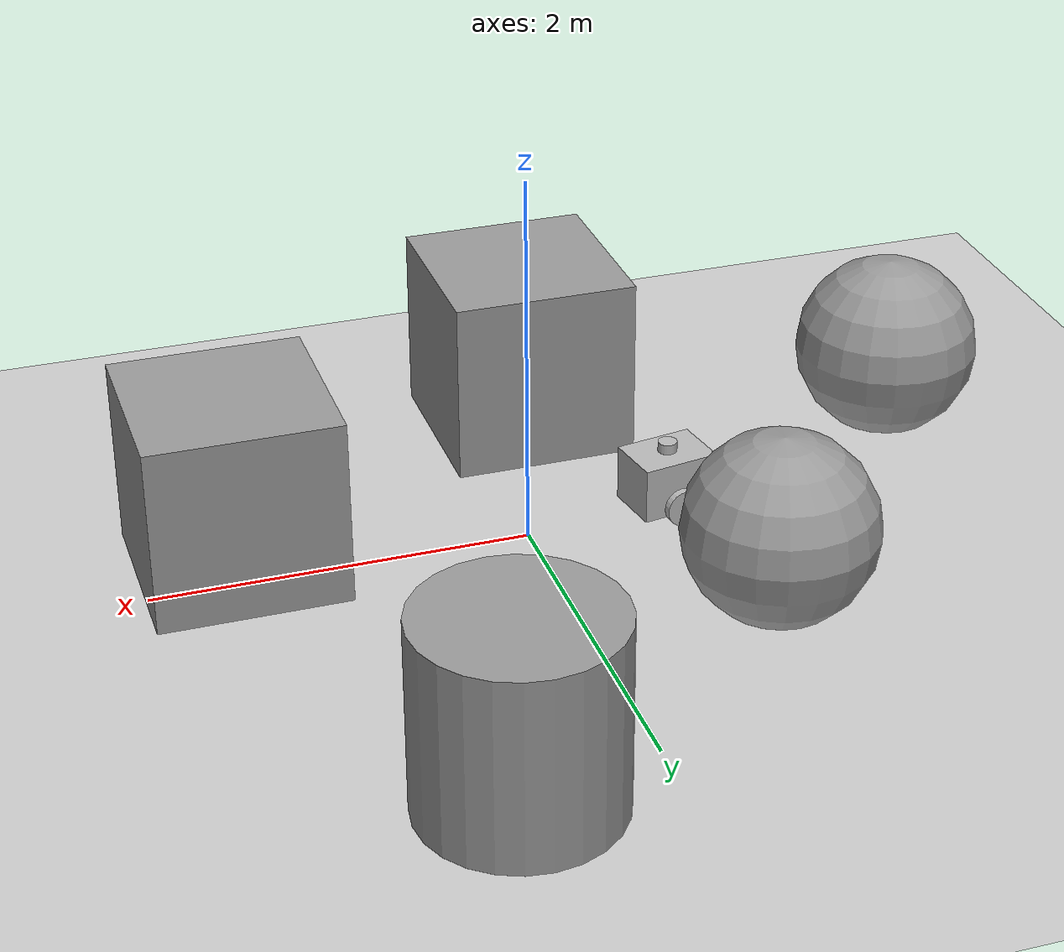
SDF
<sdf version="1.7">
 <world name="default">
  <light name="sun" type="directional">
   <pose>0 0 10 0 -0 0</pose>
   <diffuse>0.8 0.8 0.8 1</diffuse>
   <specular>0.2 0.2 0.2 1</specular>
   <attenuation>
    <range>1000</range>
    <constant>0.9</constant>
    <linear>0.01</linear>
    <quadratic>0.001</quadratic>
   </attenuation>
   <direction>-0.5 0.1 -0.9</direction>
   <spot><inner_angle>0</inner_angle><outer_angle>0</outer_angle><falloff>0</falloff></spot>
  </light>
  <model name="ground_plane">
   <static>1</static>
   <link name="link">
    <collision name="collision">
     <geometry><plane><normal>0 0 1</normal><size>100 100</size></plane></geometry>
     <surface><friction><ode><mu>100</mu><mu2>50</mu2></ode></friction></surface>
    </collision>
    <visual name="visual">
     <cast_shadows>0</cast_shadows>
     <geometry><plane><normal>0 0 1</normal><size>100 100</size></plane></geometry>
     <material>
      <script><uri>file://media/materials/scripts/gazebo.material</uri><name>Gazebo/Grey</name></script>
     </material>
    </visual>
   </link>
  </model>
  <gravity>0 0 -9.8</gravity>
  <magnetic_field>6e-06 2.3e-05 -4.2e-05</magnetic_field>
  <atmosphere type="adiabatic"/>
  <physics type="ode">
   <max_step_size>0.001</max_step_size>
   <real_time_factor>1</real_time_factor>
   <real_time_update_rate>1000</real_time_update_rate>
  </physics>
  <scene><ambient>0.4 0.4 0.4 1</ambient><background>0.7 0.7 0.7 1</background><shadows>1</shadows></scene>
  <spherical_coordinates>
   <surface_model>EARTH_WGS84</surface_model>
   <latitude_deg>0</latitude_deg>
   <longitude_deg>0</longitude_deg>
   <elevation>0</elevation>
   <heading_deg>0</heading_deg>
  </spherical_coordinates>
  <model name="unit_box">
   <pose>1.51271 -0.181418 0.499995 0 -1e-05 0</pose>
   <link name="link">
    <inertial>
     <mass>1</mass>
     <inertia>
      <ixx>0.166667</ixx>
      <ixy>0</ixy>
      <ixz>0</ixz>
      <iyy>0.166667</iyy>
      <iyz>0</iyz>
      <izz>0.166667</izz>
     </inertia>
    </inertial>
    <collision name="collision"><geometry><box><size>1 1 1</size></box></geometry></collision>
    <visual name="visual">
     <geometry><box><size>1 1 1</size></box></geometry>
     <material>
      <script><name>Gazebo/Grey</name><uri>file://media/materials/scripts/gazebo.material</uri></script>
     </material>
    </visual>
   </link>
  </model>
  <model name="unit_sphere">
   <pose>-0.944955 1.09802 0.5 0 -0 0</pose>
   <link name="link">
    <inertial>
     <mass>1</mass>
     <inertia><ixx>0.1</ixx><ixy>0</ixy><ixz>0</ixz><iyy>0.1</iyy><iyz>0</iyz><izz>0.1</izz></inertia>
    </inertial>
    <collision name="collision"><geometry><sphere><radius>0.5</radius></sphere></geometry></collision>
    <visual name="visual">
     <geometry><sphere><radius>0.5</radius></sphere></geometry>
     <material>
      <script><name>Gazebo/Grey</name><uri>file://media/materials/scripts/gazebo.material</uri></script>
     </material>
    </visual>
   </link>
  </model>
  <audio><device>default</device></audio>
  <model name="diablo">
   <link name="base_link">
    <inertial>
     <pose>0.017738 0.000102 0.380982 1.5708 -0 1.5708</pose>
     <mass>15.26</mass>
     <inertia>
      <ixx>0.372959</ixx>
      <ixy>-9.96391e-06</ixy>
      <ixz>3.01407e-07</ixz>
      <iyy>0.344225</iyy>
      <iyz>0.000801119</iyz>
      <izz>0.27115</izz>
     </inertia>
    </inertial>
    <collision name="base_link_collision"><geometry><box><size>0.42 0.31 0.3</size></box></geometry></collision>
    <collision name="base_link_fixed_joint_lump__camera_link_collision_1">
     <pose>0.215 0 0.05 0 -0 0</pose>
     <geometry><box><size>0.015 0.13 0.022</size></box></geometry>
    </collision>
    <collision name="base_link_fixed_joint_lump__imu_link_collision_2">
     <pose>0 0 0.01 0 -0 0</pose>
     <geometry><box><size>0.1 0.1 0.1</size></box></geometry>
    </collision>
    <collision name="base_link_fixed_joint_lump__lidar_link_collision_3">
     <geometry><cylinder><length>0.055</length><radius>0.0508</radius></cylinder></geometry>
    </collision>
    <visual name="base_link_visual"><geometry><box><size>0.42 0.31 0.3</size></box></geometry></visual>
    <visual name="base_link_fixed_joint_lump__camera_link_visual_1">
     <pose>0.215 0 0.05 0 -0 0</pose>
     <geometry><box><size>0.015 0.13 0.022</size></box></geometry>
    </visual>
    <visual name="base_link_fixed_joint_lump__imu_link_visual_2">
     <pose>0 0 0.01 0 -0 0</pose>
     <geometry><box><size>0.1 0.1 0.1</size></box></geometry>
    </visual>
    <visual name="base_link_fixed_joint_lump__lidar_link_visual_3">
     <pose>0 0 0.18 0 -0 0</pose>
     <geometry><cylinder><length>0.055</length><radius>0.0508</radius></cylinder></geometry>
    </visual>
    <sensor name="depth_camera" type="depth">
     <visualize>1</visualize>
     <update_rate>30</update_rate>
     <camera name="camera">
      <horizontal_fov>1.0472</horizontal_fov>
      <image><width>640</width><height>480</height><format>R8G8B8</format></image>
      <clip><near>0.05</near><far>3</far></clip>
     </camera>
     <plugin name="depth_camera_controller" filename="libgazebo_ros_camera.so">
      <baseline>0.2</baseline>
      <alwaysOn>1</alwaysOn>
      <updateRate>0.0</updateRate>
      <frame_name>camera_depth_frame</frame_name>
      <pointCloudCutoff>0.5</pointCloudCutoff>
      <pointCloudCutoffMax>3.0</pointCloudCutoffMax>
      <distortionK1>0</distortionK1>
      <distortionK2>0</distortionK2>
      <distortionK3>0</distortionK3>
      <distortionT1>0</distortionT1>
      <distortionT2>0</distortionT2>
      <CxPrime>0</CxPrime>
      <Cx>0</Cx>
      <Cy>0</Cy>
      <focalLength>0</focalLength>
      <hackBaseline>0</hackBaseline>
     </plugin>
     <pose>0.215 0 0.05 0 -0 0</pose>
    </sensor>
    <sensor name="imu_sensor" type="imu">
     <plugin name="imu_plugin" filename="libgazebo_ros_imu_sensor.so">
      <ros><namespace>/diablo</namespace><remapping>~/out:=imu</remapping></ros>
      <initial_orientation_as_reference>0</initial_orientation_as_reference>
     </plugin>
     <always_on>1</always_on>
     <update_rate>100</update_rate>
     <visualize>1</visualize>
     <imu>
      <angular_velocity>
       <x>
        <noise type="gaussian">
         <mean>0</mean>
         <stddev>0.0002</stddev>
         <bias_mean>7.5e-06</bias_mean>
         <bias_stddev>8e-07</bias_stddev>
        </noise>
       </x>
       <y>
        <noise type="gaussian">
         <mean>0</mean>
         <stddev>0.0002</stddev>
         <bias_mean>7.5e-06</bias_mean>
         <bias_stddev>8e-07</bias_stddev>
        </noise>
       </y>
       <z>
        <noise type="gaussian">
         <mean>0</mean>
         <stddev>0.0002</stddev>
         <bias_mean>7.5e-06</bias_mean>
         <bias_stddev>8e-07</bias_stddev>
        </noise>
       </z>
      </angular_velocity>
      <linear_acceleration>
       <x>
        <noise type="gaussian">
         <mean>0</mean>
         <stddev>0.017</stddev>
         <bias_mean>0.1</bias_mean>
         <bias_stddev>0.001</bias_stddev>
        </noise>
       </x>
       <y>
        <noise type="gaussian">
         <mean>0</mean>
         <stddev>0.017</stddev>
         <bias_mean>0.1</bias_mean>
         <bias_stddev>0.001</bias_stddev>
        </noise>
       </y>
       <z>
        <noise type="gaussian">
         <mean>0</mean>
         <stddev>0.017</stddev>
         <bias_mean>0.1</bias_mean>
         <bias_stddev>0.001</bias_stddev>
        </noise>
       </z>
      </linear_acceleration>
     </imu>
     <pose>0 0 0.01 0 -0 0</pose>
    </sensor>
    <sensor name="velodyne-VLP16" type="ray">
     <visualize>0</visualize>
     <update_rate>10</update_rate>
     <ray>
      <scan>
       <horizontal>
        <samples>440</samples>
        <resolution>1</resolution>
        <min_angle>-3.14159</min_angle>
        <max_angle>3.14159</max_angle>
       </horizontal>
       <vertical>
        <samples>16</samples>
        <resolution>1</resolution>
        <min_angle>-0.261799</min_angle>
        <max_angle>0.261799</max_angle>
       </vertical>
      </scan>
      <range><min>0.3</min><max>131</max><resolution>0.001</resolution></range>
      <noise><type>gaussian</type><mean>0</mean><stddev>0</stddev></noise>
     </ray>
     <plugin name="gazebo_ros_laser_controller" filename="libgazebo_ros_velodyne_laser.so">
      <topicName>/velodyne_points</topicName>
      <frameName>lidar_link</frameName>
      <min_range>0.9</min_range>
      <max_range>130.0</max_range>
      <gaussianNoise>0.008</gaussianNoise>
     </plugin>
    </sensor>
   </link>
   <joint name="caster2_joint" type="revolute">
    <pose relative_to="base_link">-0.14 0 -0.15 0 -0 0</pose>
    <parent>base_link</parent>
    <child>back_caster</child>
    <axis>
     <xyz>1 0 0</xyz>
     <limit><lower>-1e+16</lower><upper>1e+16</upper></limit>
     <dynamics><spring_reference>0</spring_reference><spring_stiffness>0</spring_stiffness></dynamics>
    </axis>
   </joint>
   <link name="back_caster">
    <pose relative_to="caster2_joint">0 0 0 0 -0 0</pose>
    <inertial>
     <mass>0.01</mass>
     <inertia><ixx>1e-05</ixx><ixy>0</ixy><ixz>0</ixz><iyy>1e-05</iyy><iyz>0</iyz><izz>1e-05</izz></inertia>
    </inertial>
    <collision name="back_caster_collision">
     <geometry><sphere><radius>0.05</radius></sphere></geometry>
    </collision>
    <visual name="back_caster_visual"><geometry><sphere><radius>0.05</radius></sphere></geometry></visual>
   </link>
   <joint name="caster_joint" type="revolute">
    <pose relative_to="base_link">0.14 0 -0.15 0 -0 0</pose>
    <parent>base_link</parent>
    <child>front_caster</child>
    <axis>
     <xyz>1 0 0</xyz>
     <limit><lower>-1e+16</lower><upper>1e+16</upper></limit>
     <dynamics><spring_reference>0</spring_reference><spring_stiffness>0</spring_stiffness></dynamics>
    </axis>
   </joint>
   <link name="front_caster">
    <pose relative_to="caster_joint">0 0 0 0 -0 0</pose>
    <inertial>
     <mass>0.01</mass>
     <inertia><ixx>1e-05</ixx><ixy>0</ixy><ixz>0</ixz><iyy>1e-05</iyy><iyz>0</iyz><izz>1e-05</izz></inertia>
    </inertial>
    <collision name="front_caster_collision">
     <geometry><sphere><radius>0.05</radius></sphere></geometry>
    </collision>
    <visual name="front_caster_visual"><geometry><sphere><radius>0.05</radius></sphere></geometry></visual>
   </link>
   <joint name="drivewhl_l_joint" type="revolute">
    <pose relative_to="base_link">0 0.18 -0.1 0 -0 0</pose>
    <parent>base_link</parent>
    <child>drivewhl_l_link</child>
    <axis>
     <xyz>0 1 0</xyz>
     <limit><lower>-1e+16</lower><upper>1e+16</upper></limit>
     <dynamics><spring_reference>0</spring_reference><spring_stiffness>0</spring_stiffness></dynamics>
    </axis>
   </joint>
   <link name="drivewhl_l_link">
    <pose relative_to="drivewhl_l_joint">0 0 0 0 -0 0</pose>
    <inertial>
     <pose>0 0 0 1.5708 -0 0</pose>
     <mass>0.5</mass>
     <inertia>
      <ixx>0.00131667</ixx>
      <ixy>0</ixy>
      <ixz>0</ixz>
      <iyy>0.00131667</iyy>
      <iyz>0</iyz>
      <izz>0.0025</izz>
     </inertia>
    </inertial>
    <collision name="drivewhl_l_link_collision">
     <pose>0 0 0 1.5708 -0 0</pose>
     <geometry><cylinder><length>0.04</length><radius>0.1</radius></cylinder></geometry>
    </collision>
    <visual name="drivewhl_l_link_visual">
     <pose>0 0 0 1.5708 -0 0</pose>
     <geometry><cylinder><length>0.04</length><radius>0.1</radius></cylinder></geometry>
    </visual>
   </link>
   <joint name="drivewhl_r_joint" type="revolute">
    <pose relative_to="base_link">0 -0.18 -0.1 0 -0 0</pose>
    <parent>base_link</parent>
    <child>drivewhl_r_link</child>
    <axis>
     <xyz>0 1 0</xyz>
     <limit><lower>-1e+16</lower><upper>1e+16</upper></limit>
     <dynamics><spring_reference>0</spring_reference><spring_stiffness>0</spring_stiffness></dynamics>
    </axis>
   </joint>
   <link name="drivewhl_r_link">
    <pose relative_to="drivewhl_r_joint">0 0 0 0 -0 0</pose>
    <inertial>
     <pose>0 0 0 1.5708 -0 0</pose>
     <mass>0.5</mass>
     <inertia>
      <ixx>0.00131667</ixx>
      <ixy>0</ixy>
      <ixz>0</ixz>
      <iyy>0.00131667</iyy>
      <iyz>0</iyz>
      <izz>0.0025</izz>
     </inertia>
    </inertial>
    <collision name="drivewhl_r_link_collision">
     <pose>0 0 0 1.5708 -0 0</pose>
     <geometry><cylinder><length>0.04</length><radius>0.1</radius></cylinder></geometry>
    </collision>
    <visual name="drivewhl_r_link_visual">
     <pose>0 0 0 1.5708 -0 0</pose>
     <geometry><cylinder><length>0.04</length><radius>0.1</radius></cylinder></geometry>
    </visual>
   </link>
   <static>0</static>
   <plugin name="diff_drive" filename="libgazebo_ros_diff_drive.so">
    <ros><namespace>/diablo</namespace><remap from="cmd_vel" to="/cmd_vel"/></ros>
    <left_joint>drivewhl_l_joint</left_joint>
    <right_joint>drivewhl_r_joint</right_joint>
    <wheel_separation>0.4</wheel_separation>
    <wheel_diameter>0.2</wheel_diameter>
    <max_wheel_torque>20</max_wheel_torque>
    <max_wheel_acceleration>1.0</max_wheel_acceleration>
    <publish_odom>1</publish_odom>
    <publish_odom_tf>1</publish_odom_tf>
    <publish_wheel_tf>1</publish_wheel_tf>
    <odometry_frame>odom</odometry_frame>
    <robot_base_frame>base_link</robot_base_frame>
   </plugin>
   <pose>-0.78287 -0.041861 0.200001 0 0.001234 -2.97308</pose>
  </model>
  <model name="unit_box_0">
   <pose>-0.332578 -1.19385 0.499995 -1e-05 -0 -0</pose>
   <link name="link">
    <inertial>
     <mass>1</mass>
     <inertia>
      <ixx>0.166667</ixx>
      <ixy>0</ixy>
      <ixz>0</ixz>
      <iyy>0.166667</iyy>
      <iyz>0</iyz>
      <izz>0.166667</izz>
     </inertia>
    </inertial>
    <collision name="collision"><geometry><box><size>1 1 1</size></box></geometry></collision>
    <visual name="visual">
     <geometry><box><size>1 1 1</size></box></geometry>
     <material>
      <script><name>Gazebo/Grey</name><uri>file://media/materials/scripts/gazebo.material</uri></script>
     </material>
    </visual>
   </link>
  </model>
  <model name="unit_sphere_0">
   <pose>-2.25955 -0.546886 0.5 0 -0 0</pose>
   <link name="link">
    <inertial>
     <mass>1</mass>
     <inertia><ixx>0.1</ixx><ixy>0</ixy><ixz>0</ixz><iyy>0.1</iyy><iyz>0</iyz><izz>0.1</izz></inertia>
    </inertial>
    <collision name="collision"><geometry><sphere><radius>0.5</radius></sphere></geometry></collision>
    <visual name="visual">
     <geometry><sphere><radius>0.5</radius></sphere></geometry>
     <material>
      <script><name>Gazebo/Grey</name><uri>file://media/materials/scripts/gazebo.material</uri></script>
     </material>
    </visual>
   </link>
  </model>
  <model name="unit_cylinder">
   <pose>0.730094 2.17679 0.499993 -3e-06 -4e-06 -0</pose>
   <link name="link">
    <inertial>
     <mass>1</mass>
     <inertia><ixx>0.145833</ixx><ixy>0</ixy><ixz>0</ixz><iyy>0.145833</iyy><iyz>0</iyz><izz>0.125</izz></inertia>
    </inertial>
    <collision name="collision">
     <geometry><cylinder><radius>0.5</radius><length>1</length></cylinder></geometry>
    </collision>
    <visual name="visual">
     <geometry><cylinder><radius>0.5</radius><length>1</length></cylinder></geometry>
     <material>
      <script><name>Gazebo/Grey</name><uri>file://media/materials/scripts/gazebo.material</uri></script>
     </material>
    </visual>
   </link>
  </model>
 </world>
</sdf>
